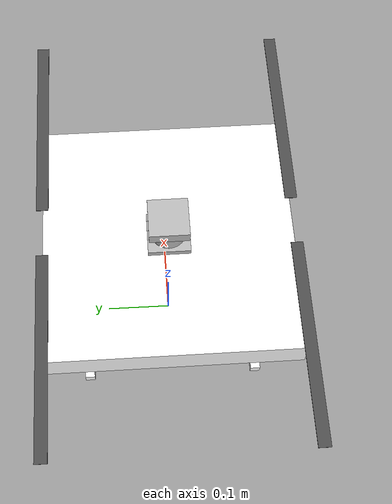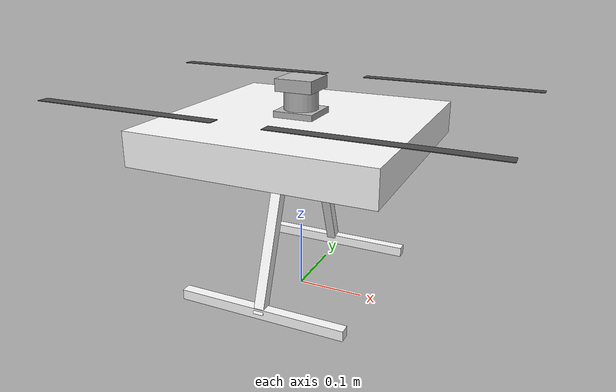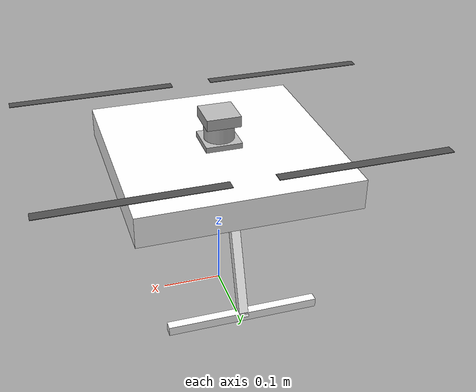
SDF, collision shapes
<?xml version="1.0" encoding="UTF-8"?>
<sdf version='1.9'>
  <model name='x500'>
    <pose>0 0 0.24 0 0 0</pose>
    <self_collide>false</self_collide>
    <static>false</static>
    <link name="base_link">
      <inertial>
        <mass>2.0</mass>
        <inertia>
          <ixx>0.02166666666666667</ixx>
          <ixy>0</ixy>
          <ixz>0</ixz>
          <iyy>0.02166666666666667</iyy>
          <iyz>0</iyz>
          <izz>0.04000000000000001</izz>
        </inertia>
      </inertial>
      <gravity>true</gravity>
      <velocity_decay/>
      <visual name="base_link_visual">
        <pose>0 0 .025 0 0 3.141592654</pose>
        <geometry>
          <mesh>
            <scale>1 1 1</scale>
            <uri>model://x500/meshes/NXP-HGD-CF.dae</uri>
          </mesh>
        </geometry>
      </visual>
      <visual name="5010_motor_base_0">
        <pose>0.174 0.174 .032 0 0 -.45</pose>
        <geometry>
          <mesh>
            <scale>1 1 1</scale>
            <uri>model://x500/meshes/5010Base.dae</uri>
          </mesh>
        </geometry>
      </visual>
      <visual name="5010_motor_base_1">
        <pose>-0.174 0.174 .032 0 0 -.45</pose>
        <geometry>
          <mesh>
            <scale>1 1 1</scale>
            <uri>model://x500/meshes/5010Base.dae</uri>
          </mesh>
        </geometry>
      </visual>
      <visual name="5010_motor_base_2">
        <pose>0.174 -0.174 .032 0 0 -.45</pose>
        <geometry>
          <mesh>
            <scale>1 1 1</scale>
            <uri>model://x500/meshes/5010Base.dae</uri>
          </mesh>
        </geometry>
      </visual>
      <visual name="5010_motor_base_3">
        <pose>-0.174 -0.174 .032 0 0 -.45</pose>
        <geometry>
          <mesh>
            <scale>1 1 1</scale>
            <uri>model://x500/meshes/5010Base.dae</uri>
          </mesh>
        </geometry>
      </visual>
      <visual name="NXP_FMUK66_FRONT">
        <pose>0.047 .001 .043 1 0 1.57</pose>
        <cast_shadows>false</cast_shadows>
        <geometry>
          <plane>
            <normal>0 0 1</normal>
            <size>.013 .007</size>
          </plane>
        </geometry>
        <material>
          <diffuse>1.0 1.0 1.0</diffuse>
          <specular>1.0 1.0 1.0</specular>
          <pbr>
            <metal>
              <albedo_map>model://x500/materials/textures/nxp.png</albedo_map>
            </metal>
          </pbr>
        </material>
      </visual>
      <visual name="NXP_FMUK66_TOP">
        <pose>-0.023 0 .0515 0 0 -1.57</pose>
        <cast_shadows>false</cast_shadows>
        <geometry>
          <plane>
            <normal>0 0 1</normal>
            <size>.013 .007</size>
          </plane>
        </geometry>
        <material>
          <diffuse>1.0 1.0 1.0</diffuse>
          <specular>1.0 1.0 1.0</specular>
          <pbr>
            <metal>
              <albedo_map>model://x500/materials/textures/nxp.png</albedo_map>
            </metal>
          </pbr>
        </material>
      </visual>
      <visual name="RDDRONE_FMUK66_TOP">
        <pose>-.03 0 .0515 0 0 -1.57</pose>
        <cast_shadows>false</cast_shadows>
        <geometry>
          <plane>
            <normal>0 0 1</normal>
            <size>.032 .0034</size>
          </plane>
        </geometry>
        <material>
          <diffuse>1.0 1.0 1.0</diffuse>
          <specular>1.0 1.0 1.0</specular>
          <pbr>
            <metal>
              <albedo_map>model://x500/materials/textures/rd.png</albedo_map>
            </metal>
          </pbr>
        </material>
      </visual>
      <collision name="base_link_collision_0">
        <pose>0 0 .007 0 0 0</pose>
        <geometry>
          <box>
            <size>0.35355339059327373 0.35355339059327373 0.05</size>
          </box>
        </geometry>
        <surface>
          <contact>
            <ode>
              <min_depth>0.001</min_depth>
              <max_vel>0</max_vel>
            </ode>
          </contact>
          <friction>
            <ode/>
          </friction>
        </surface>
      </collision>
      <collision name="base_link_collision_1">
        <pose>0 -0.098 -.123 -0.35 0 0</pose>
        <geometry>
          <box>
            <size>0.015 0.015 0.21</size>
          </box>
        </geometry>
        <surface>
          <contact>
            <ode>
              <min_depth>0.001</min_depth>
              <max_vel>0</max_vel>
            </ode>
          </contact>
          <friction>
            <ode/>
          </friction>
        </surface>
      </collision>
      <collision name="base_link_collision_2">
        <pose>0 0.098 -.123 0.35 0 0</pose>
        <geometry>
          <box>
            <size>0.015 0.015 0.21</size>
          </box>
        </geometry>
        <surface>
          <contact>
            <ode>
              <min_depth>0.001</min_depth>
              <max_vel>0</max_vel>
            </ode>
          </contact>
          <friction>
            <ode/>
          </friction>
        </surface>
      </collision>
      <collision name="base_link_collision_3">
        <pose>0 -0.132 -.2195 0 0 0</pose>
        <geometry>
          <box>
            <size>0.25 0.015 0.015</size>
          </box>
        </geometry>
        <surface>
          <contact>
            <ode>
              <min_depth>0.001</min_depth>
              <max_vel>0</max_vel>
            </ode>
          </contact>
          <friction>
            <ode/>
          </friction>
        </surface>
      </collision>
      <collision name="base_link_collision_4">
        <pose>0 0.132 -.2195 0 0 0</pose>
        <geometry>
          <box>
            <size>0.25 0.015 0.015</size>
          </box>
        </geometry>
        <surface>
          <contact>
            <ode>
              <min_depth>0.001</min_depth>
              <max_vel>0</max_vel>
            </ode>
          </contact>
          <friction>
            <ode/>
          </friction>
        </surface>
      </collision>
      <sensor name="air_pressure_sensor" type="air_pressure">
        <always_on>1</always_on>
        <update_rate>50</update_rate>
        <air_pressure>
          <pressure>
            <noise type="gaussian">
              <mean>0</mean>
              <stddev>0.01</stddev>
            </noise>
          </pressure>
        </air_pressure>
      </sensor>
      <sensor name="imu_sensor" type="imu">
        <always_on>1</always_on>
        <update_rate>250</update_rate>
      </sensor>
    </link>
    <link name="lidar_link">
      <pose>0 0 0 0 0 0</pose>
      <inertial>
        <pose>0 0 0.435 0 0 0</pose>
        <mass>0.37</mass>
        <inertia>
          <ixx>0.00034437749999999994</ixx>
          <ixy>0</ixy>
          <ixz>0</ixz>
          <iyy>0.00034437749999999994</iyy>
          <iyz>0</iyz>
          <izz>0.00022199999999999998</izz>
        </inertia>
      </inertial>
      <collision name="collision_base">
        <pose>0 0 0.0205 0 0 0</pose>
        <geometry>
          <box>
            <size>0.06 0.06 0.041</size>
          </box>
        </geometry>
      </collision>
      <collision name="collision_mid">
        <pose>0 0 0.055 0 0 0</pose>
        <geometry>
          <cylinder>
            <radius>0.025</radius>
            <length>0.028</length>
          </cylinder>
        </geometry>
      </collision>
      <collision name="collision_top">
        <pose>0 0 0.078 0 0 0</pose>
        <geometry>
          <box>
            <size>0.056 0.056 0.018</size>
          </box>
        </geometry>
      </collision>
      <visual name="visual">
        <geometry>
          <mesh>
            <uri>model://x500/meshes/lidar_2d_v2.dae</uri>
          </mesh>
        </geometry>
      </visual>
      <sensor name="lidar_2d_v2" type="gpu_lidar">
         <pose>0 0 0.105 0 0 0</pose>
        <ray>
          <scan>
            <horizontal>
              <samples>1080</samples>
              <resolution>1</resolution>
              <min_angle>-3.054325</min_angle>
              <max_angle>3.054325</max_angle>
            </horizontal>
          </scan>
          <range>
            <min>0.1</min>
            <max>12</max>
            <resolution>0.01</resolution>
          </range>
          <noise>
            <type>gaussian</type>
            <mean>0.0</mean>
            <stddev>0.001</stddev>
          </noise>
        </ray>
        <always_on>0</always_on>
        <update_rate>30</update_rate>
        <visualize>false</visualize>
      </sensor>
    </link>
    <joint name="LidarJoint" type="fixed">
      <parent>base_link</parent>
      <child>lidar_link</child>
      <pose relative_to="base_link">-.1 0 .26 0 0 0</pose>
    </joint>
    <link name="rotor_0">
      <gravity>true</gravity>
      <self_collide>false</self_collide>
      <velocity_decay/>
      <pose>0.174 -0.174 0.06 0 0 0</pose>
      <inertial>
          <mass>0.016076923076923075</mass>
          <inertia>
            <ixx>3.8464910483993325e-07</ixx>
            <iyy>2.6115851691700804e-05</iyy>
            <izz>2.649858234714004e-05</izz>
          </inertia>
        </inertial>
      <visual name="rotor_0_visual">
        <pose>-0.022 -0.14638461538461536 -0.016 0 0 0</pose>
        <geometry>
          <mesh>
            <scale>0.8461538461538461 0.8461538461538461 0.8461538461538461</scale>
            <uri>model://x500/meshes/1345_prop_ccw.stl</uri>
          </mesh>
        </geometry>
        <material>
          <script>
            <name>Gazebo/DarkGrey</name>
            <uri>file://media/materials/scripts/gazebo.material</uri>
          </script>
        </material>
      </visual>
      <visual name="rotor_0_visual_motor_bell">
        <pose>0 0 -.032 0 0 0</pose>
        <geometry>
          <mesh>
            <scale>1 1 1</scale>
            <uri>model://x500/meshes/5010Bell.dae</uri>
          </mesh>
        </geometry>
      </visual>
      <collision name="rotor_0_collision">
        <pose>0 0 0 0 0 0 </pose>
        <geometry>
          <box>
            <size>0.2792307692307692 0.016923076923076923 0.0008461538461538462</size>
          </box>
        </geometry>
        <surface>
          <contact>
            <ode>
              <min_depth>0.001</min_depth>
              <max_vel>0</max_vel>
            </ode>
          </contact>
          <friction>
            <ode/>
          </friction>
        </surface>
      </collision>
    </link>
    <joint name="rotor_0_joint" type="revolute">
      <parent>base_link</parent>
      <child>rotor_0</child>
      <axis>
        <xyz>0 0 1</xyz>
        <limit>
          <lower>-1e+16</lower>
          <upper>1e+16</upper>
        </limit>
        <dynamics>
          <spring_reference>0</spring_reference>
          <spring_stiffness>0</spring_stiffness>
        </dynamics>
      </axis>
    </joint>
    <link name="rotor_1">
      <gravity>true</gravity>
      <self_collide>false</self_collide>
      <velocity_decay/>
      <pose>-0.174 0.174 0.06 0 0 0</pose>
      <inertial>
          <mass>0.016076923076923075</mass>
          <inertia>
            <ixx>3.8464910483993325e-07</ixx>
            <iyy>2.6115851691700804e-05</iyy>
            <izz>2.649858234714004e-05</izz>
          </inertia>
        </inertial>
      <visual name="rotor_1_visual">
        <pose>-0.022 -0.14638461538461536 -0.016 0 0 0</pose>
        <geometry>
          <mesh>
            <scale>0.8461538461538461 0.8461538461538461 0.8461538461538461</scale>
            <uri>model://x500/meshes/1345_prop_ccw.stl</uri>
          </mesh>
        </geometry>
        <material>
          <script>
            <name>Gazebo/DarkGrey</name>
            <uri>file://media/materials/scripts/gazebo.material</uri>
          </script>
        </material>
      </visual>
      <visual name="rotor_1_visual_motor_top">
        <pose>0 0 -.032 0 0 0</pose>
        <geometry>
          <mesh>
            <scale>1 1 1</scale>
            <uri>model://x500/meshes/5010Bell.dae</uri>
          </mesh>
        </geometry>
      </visual>
      <collision name="rotor_1_collision">
        <pose>0 0 0 0 0 0 </pose>
        <geometry>
          <box>
            <size>0.2792307692307692 0.016923076923076923 0.0008461538461538462</size>
          </box>
        </geometry>
        <surface>
          <contact>
            <ode>
              <min_depth>0.001</min_depth>
              <max_vel>0</max_vel>
            </ode>
          </contact>
          <friction>
            <ode/>
          </friction>
        </surface>
      </collision>
    </link>
    <joint name="rotor_1_joint" type="revolute">
      <parent>base_link</parent>
      <child>rotor_1</child>
      <axis>
        <xyz>0 0 1</xyz>
        <limit>
          <lower>-1e+16</lower>
          <upper>1e+16</upper>
        </limit>
        <dynamics>
          <spring_reference>0</spring_reference>
          <spring_stiffness>0</spring_stiffness>
        </dynamics>
      </axis>
    </joint>
    <link name="rotor_2">
      <gravity>true</gravity>
      <self_collide>false</self_collide>
      <velocity_decay/>
      <pose>0.174 0.174 0.06 0 0 0</pose>
      <inertial>
          <mass>0.016076923076923075</mass>
          <inertia>
            <ixx>3.8464910483993325e-07</ixx>
            <iyy>2.6115851691700804e-05</iyy>
            <izz>2.649858234714004e-05</izz>
          </inertia>
        </inertial>
      <visual name="rotor_2_visual">
        <pose>-0.022 -0.14638461538461536 -0.016 0 0 0</pose>
        <geometry>
          <mesh>
            <scale>0.8461538461538461 0.8461538461538461 0.8461538461538461</scale>
            <uri>model://x500/meshes/1345_prop_cw.stl</uri>
          </mesh>
        </geometry>
        <material>
          <script>
            <name>Gazebo/DarkGrey</name>
            <uri>file://media/materials/scripts/gazebo.material</uri>
          </script>
        </material>
      </visual>
      <visual name="rotor_2_visual_motor_top">
        <pose>0 0 -.032 0 0 0</pose>
        <geometry>
          <mesh>
            <scale>1 1 1</scale>
            <uri>model://x500/meshes/5010Bell.dae</uri>
          </mesh>
        </geometry>
      </visual>
      <collision name="rotor_2_collision">
        <pose>0 0 0 0 0 0 </pose>
        <geometry>
          <box>
            <size>0.2792307692307692 0.016923076923076923 0.0008461538461538462</size>
          </box>
        </geometry>
        <surface>
          <contact>
            <ode>
              <min_depth>0.001</min_depth>
              <max_vel>0</max_vel>
            </ode>
          </contact>
          <friction>
            <ode/>
          </friction>
        </surface>
      </collision>
    </link>
    <joint name="rotor_2_joint" type="revolute">
      <parent>base_link</parent>
      <child>rotor_2</child>
      <axis>
        <xyz>0 0 1</xyz>
        <limit>
          <lower>-1e+16</lower>
          <upper>1e+16</upper>
        </limit>
        <dynamics>
          <spring_reference>0</spring_reference>
          <spring_stiffness>0</spring_stiffness>
        </dynamics>
      </axis>
    </joint>
    <link name="rotor_3">
      <gravity>true</gravity>
      <self_collide>false</self_collide>
      <velocity_decay/>
      <pose>-0.174 -0.174 0.06 0 0 0</pose>
      <inertial>
          <mass>0.016076923076923075</mass>
          <inertia>
            <ixx>3.8464910483993325e-07</ixx>
            <iyy>2.6115851691700804e-05</iyy>
            <izz>2.649858234714004e-05</izz>
          </inertia>
        </inertial>
      <visual name="rotor_3_visual">
        <pose>-0.022 -0.14638461538461536 -0.016 0 0 0</pose>
        <geometry>
          <mesh>
            <scale>0.8461538461538461 0.8461538461538461 0.8461538461538461</scale>
            <uri>model://x500/meshes/1345_prop_cw.stl</uri>
          </mesh>
        </geometry>
        <material>
          <script>
            <name>Gazebo/DarkGrey</name>
            <uri>file://media/materials/scripts/gazebo.material</uri>
          </script>
        </material>
      </visual>
      <visual name="rotor_3_visual_motor_top">
        <pose>0 0 -.032 0 0 0</pose>
        <geometry>
          <mesh>
            <scale>1 1 1</scale>
            <uri>model://x500/meshes/5010Bell.dae</uri>
          </mesh>
        </geometry>
      </visual>
      <collision name="rotor_3_collision">
        <pose>0 0 0 0 0 0 </pose>
        <geometry>
          <box>
            <size>0.2792307692307692 0.016923076923076923 0.0008461538461538462</size>
          </box>
        </geometry>
        <surface>
          <contact>
            <ode>
              <min_depth>0.001</min_depth>
              <max_vel>0</max_vel>
            </ode>
          </contact>
          <friction>
            <ode/>
          </friction>
        </surface>
      </collision>
    </link>
    <joint name="rotor_3_joint" type="revolute">
      <parent>base_link</parent>
      <child>rotor_3</child>
      <axis>
        <xyz>0 0 1</xyz>
        <limit>
          <lower>-1e+16</lower>
          <upper>1e+16</upper>
        </limit>
        <dynamics>
          <spring_reference>0</spring_reference>
          <spring_stiffness>0</spring_stiffness>
        </dynamics>
      </axis>
    </joint>

    <!-- Agregamos la nueva cámara -->
    <link name="pi_camera_link">
      <pose relative_to="base_link">0 0 0 0 1.57079 0</pose>
      <inertial>
        <mass>0.001</mass>
        <inertia>
          <ixx>0.0000000001</ixx>
          <ixy>0.0</ixy>
          <ixz>0.0</ixz>
          <iyy>0.0000000001</iyy>
          <iyz>0.0</iyz>
          <izz>0.0000000001</izz>
        </inertia>
      </inertial>
      <sensor name="pi_camera" type="camera">
        <pose>0 0 0 0 0 0</pose>
        <camera>
          <camera_info_topic>pi_camera/camera_info</camera_info_topic>
          <horizontal_fov>1.74</horizontal_fov>
          <image>
            <width>640</width>
            <height>480</height>
          </image>
          <clip>
            <near>0.1</near>
            <far>3000</far>
          </clip>
        </camera>
        <always_on>1</always_on>
        <update_rate>15</update_rate>
        <visualize>false</visualize>
        <topic>pi_camera/image_raw</topic>
      </sensor>
    </link>

    <joint name="PiCameraJoint" type="fixed">
      <parent>base_link</parent>
      <child>pi_camera_link</child>
    </joint>
    <!-- Agregamos la nueva cámara -->

    <!-- Agregamos la nueva cámara -->
    <link name="camera_link">
      <pose relative_to="base_link">0.15 0 0 0 0 0</pose>
      <inertial>
        <mass>0.001</mass>
        <inertia>
          <ixx>0.0000000001</ixx>
          <ixy>0.0</ixy>
          <ixz>0.0</ixz>
          <iyy>0.0000000001</iyy>
          <iyz>0.0</iyz>
          <izz>0.0000000001</izz>
        </inertia>
      </inertial>
      <sensor name="camera" type="camera">
        <pose>0 0 0 0 0 0</pose>
        <camera>
          <camera_info_topic>camera/camera_info</camera_info_topic>
          <horizontal_fov>1.74</horizontal_fov>
          <image>
            <width>640</width>
            <height>480</height>
          </image>
          <clip>
            <near>0.1</near>
            <far>3000</far>
          </clip>
        </camera>
        <always_on>1</always_on>
        <update_rate>15</update_rate>
        <visualize>false</visualize>
        <topic>camera/image_raw</topic>
      </sensor>
    </link>

    <joint name="CameraJoint" type="fixed">
      <parent>base_link</parent>
      <child>camera_link</child>
    </joint>
    <!-- Agregamos la nueva cámara -->

   <plugin filename="gz-sim-multicopter-motor-model-system" name="gz::sim::systems::MulticopterMotorModel">
      <jointName>rotor_0_joint</jointName>
      <linkName>rotor_0</linkName>
      <turningDirection>ccw</turningDirection>
      <timeConstantUp>0.0125</timeConstantUp>
      <timeConstantDown>0.025</timeConstantDown>
      <maxRotVelocity>1000.0</maxRotVelocity>
      <motorConstant>8.54858e-06</motorConstant>
      <momentConstant>0.016</momentConstant>
      <commandSubTopic>command/motor_speed</commandSubTopic>
      <motorNumber>0</motorNumber>
      <rotorDragCoefficient>8.06428e-05</rotorDragCoefficient>
      <rollingMomentCoefficient>1e-06</rollingMomentCoefficient>
      <rotorVelocitySlowdownSim>10</rotorVelocitySlowdownSim>
      <motorType>velocity</motorType>
    </plugin>
    <plugin filename="gz-sim-multicopter-motor-model-system" name="gz::sim::systems::MulticopterMotorModel">
      <jointName>rotor_1_joint</jointName>
      <linkName>rotor_1</linkName>
      <turningDirection>ccw</turningDirection>
      <timeConstantUp>0.0125</timeConstantUp>
      <timeConstantDown>0.025</timeConstantDown>
      <maxRotVelocity>1000.0</maxRotVelocity>
      <motorConstant>8.54858e-06</motorConstant>
      <momentConstant>0.016</momentConstant>
      <commandSubTopic>command/motor_speed</commandSubTopic>
      <motorNumber>1</motorNumber>
      <rotorDragCoefficient>8.06428e-05</rotorDragCoefficient>
      <rollingMomentCoefficient>1e-06</rollingMomentCoefficient>
      <rotorVelocitySlowdownSim>10</rotorVelocitySlowdownSim>
      <motorType>velocity</motorType>
    </plugin>
    <plugin filename="gz-sim-multicopter-motor-model-system" name="gz::sim::systems::MulticopterMotorModel">
      <jointName>rotor_2_joint</jointName>
      <linkName>rotor_2</linkName>
      <turningDirection>cw</turningDirection>
      <timeConstantUp>0.0125</timeConstantUp>
      <timeConstantDown>0.025</timeConstantDown>
      <maxRotVelocity>1000.0</maxRotVelocity>
      <motorConstant>8.54858e-06</motorConstant>
      <momentConstant>0.016</momentConstant>
      <commandSubTopic>command/motor_speed</commandSubTopic>
      <motorNumber>2</motorNumber>
      <rotorDragCoefficient>8.06428e-05</rotorDragCoefficient>
      <rollingMomentCoefficient>1e-06</rollingMomentCoefficient>
      <rotorVelocitySlowdownSim>10</rotorVelocitySlowdownSim>
      <motorType>velocity</motorType>
    </plugin>
    <plugin filename="gz-sim-multicopter-motor-model-system" name="gz::sim::systems::MulticopterMotorModel">
      <jointName>rotor_3_joint</jointName>
      <linkName>rotor_3</linkName>
      <turningDirection>cw</turningDirection>
      <timeConstantUp>0.0125</timeConstantUp>
      <timeConstantDown>0.025</timeConstantDown>
      <maxRotVelocity>1000.0</maxRotVelocity>
      <motorConstant>8.54858e-06</motorConstant>
      <momentConstant>0.016</momentConstant>
      <commandSubTopic>command/motor_speed</commandSubTopic>
      <motorNumber>3</motorNumber>
      <rotorDragCoefficient>8.06428e-05</rotorDragCoefficient>
      <rollingMomentCoefficient>1e-06</rollingMomentCoefficient>
      <rotorVelocitySlowdownSim>10</rotorVelocitySlowdownSim>
      <motorType>velocity</motorType>
    </plugin>
  </model>
</sdf>
